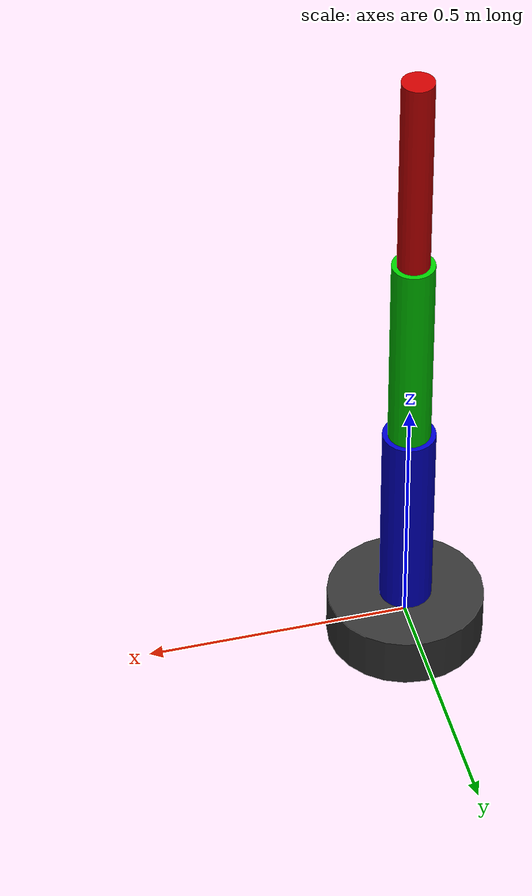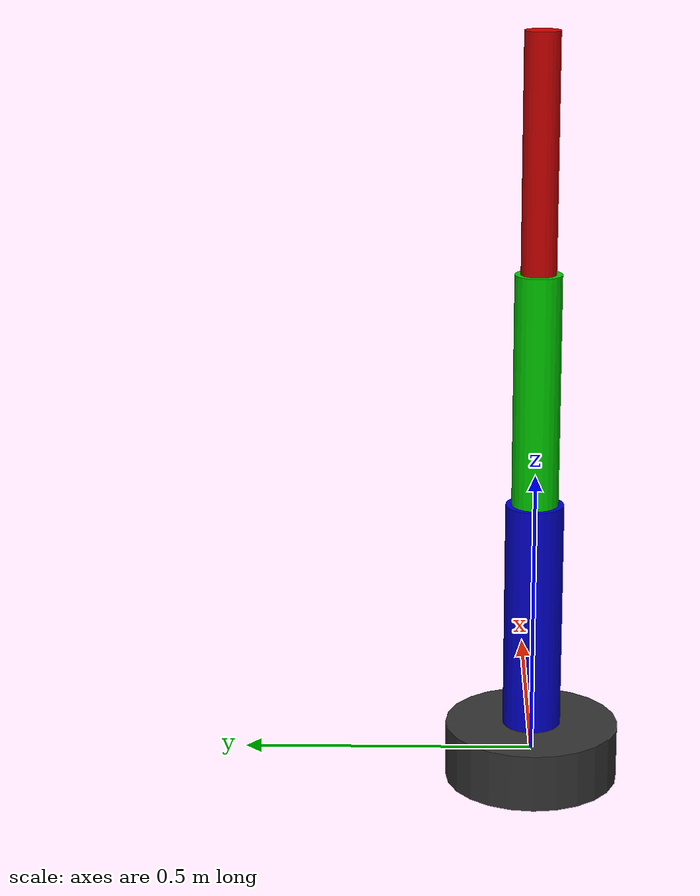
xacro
<?xml version="1.0"?>
<robot xmlns:xacro="http://www.ros.org/wiki/xacro" name="rrr_robot">

  <xacro:property name="link_len" value="0.4"/>
  <xacro:property name="link_rad" value="0.05"/>

  <material name="blue"><color rgba="0 0 0.8 1"/></material>
  <material name="green"><color rgba="0 0.8 0 1"/></material>
  <material name="red"><color rgba="0.8 0 0 1"/></material>
  <material name="grey"><color rgba="0.2 0.2 0.2 1"/></material>

  <link name="base_link">
    <visual>
      <geometry><cylinder length="0.1" radius="0.15"/></geometry>
      <material name="grey"/>
    </visual>
  </link>

  <joint name="joint1" type="revolute">
    <parent link="base_link"/>
    <child link="link1"/>
    <origin xyz="0 0 0.05" rpy="0 0 0"/>
    <axis xyz="0 0 1"/>
    <limit lower="-3.14" upper="3.14" effort="10.0" velocity="1.0"/>
  </joint>

  <link name="link1">
    <visual>
      <origin xyz="0 0 ${link_len/2}" rpy="0 0 0"/>
      <geometry><cylinder length="${link_len}" radius="${link_rad}"/></geometry>
      <material name="blue"/>
    </visual>
  </link>

  <joint name="joint2" type="revolute">
    <parent link="link1"/>
    <child link="link2"/>
    <origin xyz="0 0 ${link_len}" rpy="0 0 0"/>
    <axis xyz="0 1 0"/>
    <limit lower="-2.5" upper="2.5" effort="10.0" velocity="1.0"/>
  </joint>

  <link name="link2">
    <visual>
      <origin xyz="0 0 ${link_len/2}" rpy="0 0 0"/>
      <geometry><cylinder length="${link_len}" radius="${link_rad*0.8}"/></geometry>
      <material name="green"/>
    </visual>
  </link>

  <joint name="joint3" type="revolute">
    <parent link="link2"/>
    <child link="link3"/>
    <origin xyz="0 0 ${link_len}" rpy="0 0 0"/>
    <axis xyz="0 1 0"/>
    <limit lower="-2.5" upper="2.5" effort="10.0" velocity="1.0"/>
  </joint>

  <link name="link3">
    <visual>
      <origin xyz="0 0 ${link_len/2}" rpy="0 0 0"/>
      <geometry><cylinder length="${link_len}" radius="${link_rad*0.6}"/></geometry>
      <material name="red"/>
    </visual>
  </link>
</robot>
